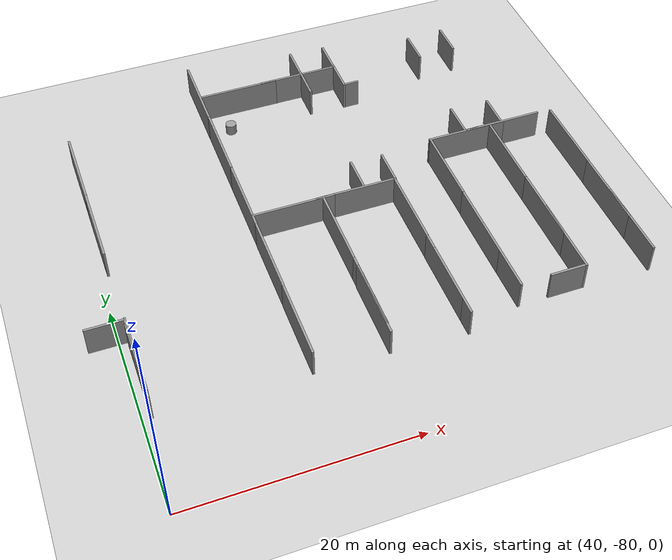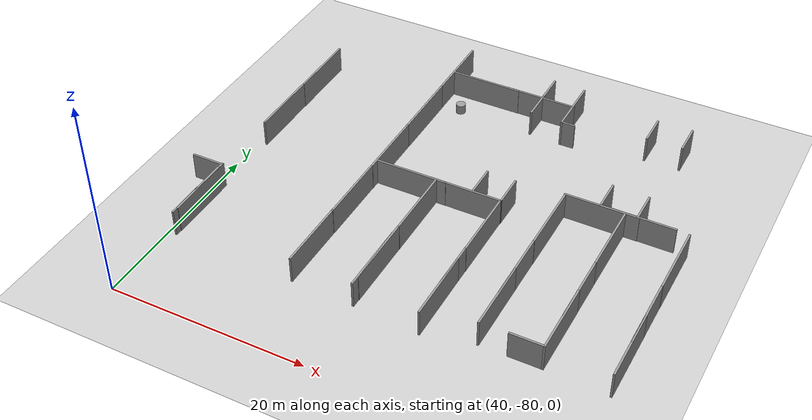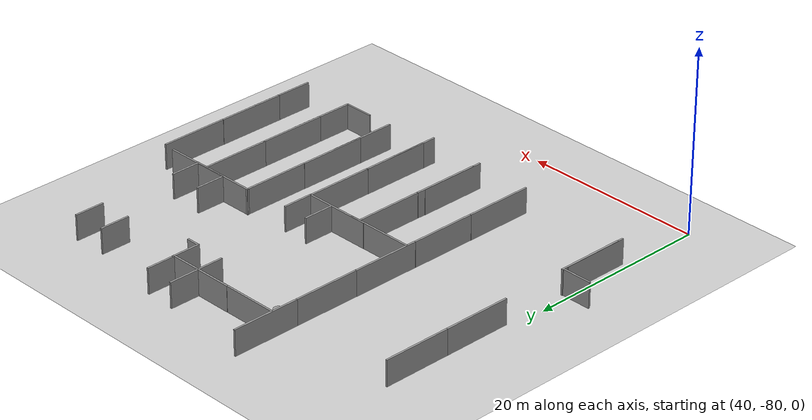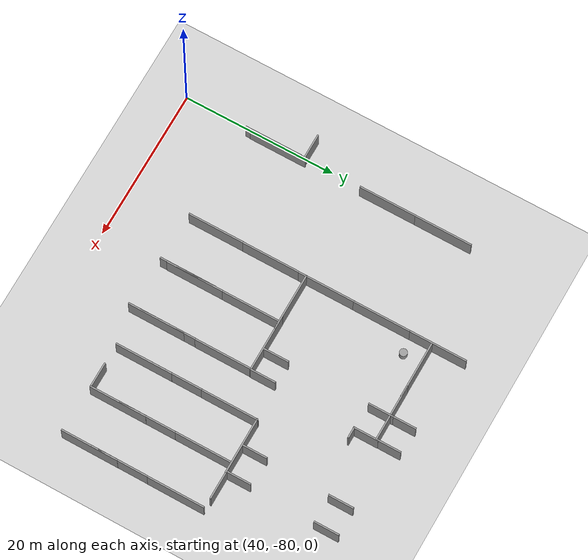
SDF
<sdf version="1.7">
 <world name="default">
  <model name="ground_plane">
   <static>1</static>
   <link name="link">
    <collision name="collision">
     <geometry><plane><normal>0 0 1</normal><size>100 100</size></plane></geometry>
     <surface>
      <contact><collide_bitmask>65535</collide_bitmask></contact>
      <friction><ode><mu>100</mu><mu2>50</mu2></ode></friction>
     </surface>
    </collision>
    <visual name="visual">
     <cast_shadows>0</cast_shadows>
     <geometry><plane><normal>0 0 1</normal><size>100 100</size></plane></geometry>
     <material>
      <script><uri>file://media/materials/scripts/gazebo.material</uri><name>Gazebo/Grey</name></script>
     </material>
    </visual>
   </link>
  </model>
  <model name="grey_wall_clone_2_clone_clone_clone_1_clone_clone_clone_clone_2_clone">
   <static>1</static>
   <link name="link">
    <pose>0 0 1.4 0 -0 0</pose>
    <collision name="collision"><geometry><box><size>7.5 0.2 2.8</size></box></geometry></collision>
    <visual name="visual">
     <cast_shadows>0</cast_shadows>
     <geometry><box><size>7.5 0.2 2.8</size></box></geometry>
     <material>
      <script>
       <uri>model://grey_wall/materials/scripts</uri>
       <uri>model://grey_wall/materials/textures</uri>
       <name>vrc/grey_wall</name>
      </script>
     </material>
    </visual>
   </link>
   <pose>40.8158 -67.0392 0 0 0 -1.5708</pose>
  </model>
  <model name="grey_wall_clone_2_clone_clone_clone_1_clone_clone_clone_clone_2_clone_0">
   <static>1</static>
   <link name="link">
    <pose>0 0 1.4 0 -0 0</pose>
    <collision name="collision"><geometry><box><size>7.5 0.2 2.8</size></box></geometry></collision>
    <visual name="visual">
     <cast_shadows>0</cast_shadows>
     <geometry><box><size>7.5 0.2 2.8</size></box></geometry>
     <material>
      <script>
       <uri>model://grey_wall/materials/scripts</uri>
       <uri>model://grey_wall/materials/textures</uri>
       <name>vrc/grey_wall</name>
      </script>
     </material>
    </visual>
   </link>
   <pose>40.7724 -67.6954 0 0 0 -1.5708</pose>
  </model>
  <model name="grey_wall_clone_2_clone_clone_clone_1_clone_clone_clone_clone_2_clone_2">
   <static>1</static>
   <link name="link">
    <pose>0 0 1.4 0 -0 0</pose>
    <collision name="collision"><geometry><box><size>7.5 0.2 2.8</size></box></geometry></collision>
    <visual name="visual">
     <cast_shadows>0</cast_shadows>
     <geometry><box><size>7.5 0.2 2.8</size></box></geometry>
     <material>
      <script>
       <uri>model://grey_wall/materials/scripts</uri>
       <uri>model://grey_wall/materials/textures</uri>
       <name>vrc/grey_wall</name>
      </script>
     </material>
    </visual>
   </link>
   <pose>40.8041 -52.2143 0 0 0 -1.5708</pose>
  </model>
  <model name="grey_wall_clone_2_clone_clone_clone_1_clone_clone_clone_clone_2_clone_3">
   <static>1</static>
   <link name="link">
    <pose>0 0 1.4 0 -0 0</pose>
    <collision name="collision"><geometry><box><size>7.5 0.2 2.8</size></box></geometry></collision>
    <visual name="visual">
     <cast_shadows>0</cast_shadows>
     <geometry><box><size>7.5 0.2 2.8</size></box></geometry>
     <material>
      <script>
       <uri>model://grey_wall/materials/scripts</uri>
       <uri>model://grey_wall/materials/textures</uri>
       <name>vrc/grey_wall</name>
      </script>
     </material>
    </visual>
   </link>
   <pose>40.8131 -44.7602 0 0 0 -1.5708</pose>
  </model>
  <model name="fixed_half_clone_17_clone_3">
   <link name="link">
    <pose>0 0 1.4 0 -0 0</pose>
    <inertial>
     <mass>1</mass>
     <inertia><ixx>1</ixx><ixy>0</ixy><ixz>0</ixz><iyy>1</iyy><iyz>0</iyz><izz>1</izz></inertia>
    </inertial>
    <visual name="visual">
     <cast_shadows>0</cast_shadows>
     <geometry><box><size>3.3 0.2 2.8</size></box></geometry>
     <material>
      <script>
       <uri>model://grey_wall/materials/scripts</uri>
       <uri>model://grey_wall/materials/textures</uri>
       <name>vrc/grey_wall</name>
      </script>
      <shader type="pixel"><normal_map>__default__</normal_map></shader>
      <ambient>1 1 1 1</ambient>
      <diffuse>1 1 1 1</diffuse>
      <specular>0 0 0 1</specular>
      <emissive>0 0 0 1</emissive>
     </material>
    </visual>
    <collision name="collision">
     <geometry><box><size>3.3 0.2 2.8</size></box></geometry>
     <surface>
      <friction>
       <ode><mu>1</mu><mu2>1</mu2><fdir1>0 0 0</fdir1><slip1>0</slip1><slip2>0</slip2></ode>
       <torsional>
        <coefficient>1</coefficient>
        <patch_radius>0</patch_radius>
        <surface_radius>0</surface_radius>
        <use_patch_radius>1</use_patch_radius>
        <ode><slip>0</slip></ode>
       </torsional>
      </friction>
      <bounce><restitution_coefficient>0</restitution_coefficient><threshold>1e+06</threshold></bounce>
      <contact>
       <collide_without_contact>0</collide_without_contact>
       <collide_without_contact_bitmask>1</collide_without_contact_bitmask>
       <collide_bitmask>1</collide_bitmask>
       <ode>
        <soft_cfm>0</soft_cfm>
        <soft_erp>0.2</soft_erp>
        <kp>1e+13</kp>
        <kd>1</kd>
        <max_vel>0.01</max_vel>
        <min_depth>0</min_depth>
       </ode>
       <bullet>
        <split_impulse>1</split_impulse>
        <split_impulse_penetration_threshold>-0.01</split_impulse_penetration_threshold>
        <soft_cfm>0</soft_cfm>
        <soft_erp>0.2</soft_erp>
        <kp>1e+13</kp>
        <kd>1</kd>
       </bullet>
      </contact>
     </surface>
    </collision>
   </link>
   <static>1</static>
   <pose>39.1343 -63.4639 0 0 -0 3.14159</pose>
  </model>
  <model name="grey_wall_clone_2_clone_clone_clone_1_clone_clone_0_clone_1_clone_clone_clone_clone_clone">
   <static>1</static>
   <link name="link">
    <pose>0 0 1.4 0 -0 0</pose>
    <collision name="collision"><geometry><box><size>7.5 0.2 2.8</size></box></geometry></collision>
    <visual name="visual">
     <cast_shadows>0</cast_shadows>
     <geometry><box><size>7.5 0.2 2.8</size></box></geometry>
     <material>
      <script>
       <uri>model://grey_wall/materials/scripts</uri>
       <uri>model://grey_wall/materials/textures</uri>
       <name>vrc/grey_wall</name>
      </script>
     </material>
    </visual>
   </link>
   <pose>53.7303 -38.414 0 0 0 -1.5708</pose>
  </model>
  <model name="grey_wall_clone_2_clone_clone_clone_1_clone_clone_0_clone_1_clone_clone_clone_clone_clone_0">
   <static>1</static>
   <link name="link">
    <pose>0 0 1.4 0 -0 0</pose>
    <collision name="collision"><geometry><box><size>7.5 0.2 2.8</size></box></geometry></collision>
    <visual name="visual">
     <cast_shadows>0</cast_shadows>
     <geometry><box><size>7.5 0.2 2.8</size></box></geometry>
     <material>
      <script>
       <uri>model://grey_wall/materials/scripts</uri>
       <uri>model://grey_wall/materials/textures</uri>
       <name>vrc/grey_wall</name>
      </script>
     </material>
    </visual>
   </link>
   <pose>53.7355 -45.8856 0 0 0 -1.5708</pose>
  </model>
  <model name="grey_wall_clone_2_clone_clone_clone_1_clone_clone_0_clone_1_clone_clone_clone_clone_clone_1">
   <static>1</static>
   <link name="link">
    <pose>0 0 1.4 0 -0 0</pose>
    <collision name="collision"><geometry><box><size>7.5 0.2 2.8</size></box></geometry></collision>
    <visual name="visual">
     <cast_shadows>0</cast_shadows>
     <geometry><box><size>7.5 0.2 2.8</size></box></geometry>
     <material>
      <script>
       <uri>model://grey_wall/materials/scripts</uri>
       <uri>model://grey_wall/materials/textures</uri>
       <name>vrc/grey_wall</name>
      </script>
     </material>
    </visual>
   </link>
   <pose>53.7231 -53.2391 0 0 0 -1.5708</pose>
  </model>
  <model name="grey_wall_clone_2_clone_clone_clone_1_clone_clone_0_clone_1_clone_clone_clone_clone_clone_2">
   <static>1</static>
   <link name="link">
    <pose>0 0 1.4 0 -0 0</pose>
    <collision name="collision"><geometry><box><size>7.5 0.2 2.8</size></box></geometry></collision>
    <visual name="visual">
     <cast_shadows>0</cast_shadows>
     <geometry><box><size>7.5 0.2 2.8</size></box></geometry>
     <material>
      <script>
       <uri>model://grey_wall/materials/scripts</uri>
       <uri>model://grey_wall/materials/textures</uri>
       <name>vrc/grey_wall</name>
      </script>
     </material>
    </visual>
   </link>
   <pose>53.7033 -60.7358 0 0 0 -1.5708</pose>
  </model>
  <model name="grey_wall_clone_2_clone_clone_clone_1_clone_clone_0_clone_1_clone_clone_clone_clone_clone_3">
   <static>1</static>
   <link name="link">
    <pose>0 0 1.4 0 -0 0</pose>
    <collision name="collision"><geometry><box><size>7.5 0.2 2.8</size></box></geometry></collision>
    <visual name="visual">
     <cast_shadows>0</cast_shadows>
     <geometry><box><size>7.5 0.2 2.8</size></box></geometry>
     <material>
      <script>
       <uri>model://grey_wall/materials/scripts</uri>
       <uri>model://grey_wall/materials/textures</uri>
       <name>vrc/grey_wall</name>
      </script>
     </material>
    </visual>
   </link>
   <pose>53.6836 -68.0389 0 0 0 -1.5708</pose>
  </model>
  <model name="grey_wall_clone_1_clone_2_clone_clone_clone_clone_clone_clone_clone_clone_clone_0_clone">
   <static>1</static>
   <link name="link">
    <pose>0 0 1.4 0 -0 0</pose>
    <collision name="collision"><geometry><box><size>7.5 0.2 2.8</size></box></geometry></collision>
    <visual name="visual">
     <cast_shadows>0</cast_shadows>
     <geometry><box><size>7.5 0.2 2.8</size></box></geometry>
     <material>
      <script>
       <uri>model://grey_wall/materials/scripts</uri>
       <uri>model://grey_wall/materials/textures</uri>
       <name>vrc/grey_wall</name>
      </script>
     </material>
    </visual>
   </link>
   <pose>57.4842 -39.19 0 0 -0 0</pose>
  </model>
  <model name="grey_wall_clone_1_clone_2_clone_clone_clone_clone_clone_clone_clone_clone_clone_0_clone_clone">
   <static>1</static>
   <link name="link">
    <pose>0 0 1.4 0 -0 0</pose>
    <collision name="collision"><geometry><box><size>7.5 0.2 2.8</size></box></geometry></collision>
    <visual name="visual">
     <cast_shadows>0</cast_shadows>
     <geometry><box><size>7.5 0.2 2.8</size></box></geometry>
     <material>
      <script>
       <uri>model://grey_wall/materials/scripts</uri>
       <uri>model://grey_wall/materials/textures</uri>
       <name>vrc/grey_wall</name>
      </script>
     </material>
    </visual>
   </link>
   <pose>63.5284 -39.1669 0 0 -0 0</pose>
  </model>
  <model name="fixed_half_clone_16_clone_clone_clone_0_clone">
   <link name="link">
    <pose>0 0 1.4 0 -0 0</pose>
    <inertial>
     <mass>1</mass>
     <inertia><ixx>1</ixx><ixy>0</ixy><ixz>0</ixz><iyy>1</iyy><iyz>0</iyz><izz>1</izz></inertia>
    </inertial>
    <visual name="visual">
     <cast_shadows>0</cast_shadows>
     <geometry><box><size>3.3 0.2 2.8</size></box></geometry>
     <material>
      <script>
       <uri>model://grey_wall/materials/scripts</uri>
       <uri>model://grey_wall/materials/textures</uri>
       <name>vrc/grey_wall</name>
      </script>
      <shader type="pixel"><normal_map>__default__</normal_map></shader>
      <ambient>1 1 1 1</ambient>
      <diffuse>1 1 1 1</diffuse>
      <specular>0 0 0 1</specular>
      <emissive>0 0 0 1</emissive>
     </material>
    </visual>
    <collision name="collision">
     <geometry><box><size>3.3 0.2 2.8</size></box></geometry>
     <surface>
      <friction>
       <ode><mu>1</mu><mu2>1</mu2><fdir1>0 0 0</fdir1><slip1>0</slip1><slip2>0</slip2></ode>
       <torsional>
        <coefficient>1</coefficient>
        <patch_radius>0</patch_radius>
        <surface_radius>0</surface_radius>
        <use_patch_radius>1</use_patch_radius>
        <ode><slip>0</slip></ode>
       </torsional>
      </friction>
      <bounce><restitution_coefficient>0</restitution_coefficient><threshold>1e+06</threshold></bounce>
      <contact>
       <collide_without_contact>0</collide_without_contact>
       <collide_without_contact_bitmask>1</collide_without_contact_bitmask>
       <collide_bitmask>1</collide_bitmask>
       <ode>
        <soft_cfm>0</soft_cfm>
        <soft_erp>0.2</soft_erp>
        <kp>1e+13</kp>
        <kd>1</kd>
        <max_vel>0.01</max_vel>
        <min_depth>0</min_depth>
       </ode>
       <bullet>
        <split_impulse>1</split_impulse>
        <split_impulse_penetration_threshold>-0.01</split_impulse_penetration_threshold>
        <soft_cfm>0</soft_cfm>
        <soft_erp>0.2</soft_erp>
        <kp>1e+13</kp>
        <kd>1</kd>
       </bullet>
      </contact>
     </surface>
    </collision>
   </link>
   <static>1</static>
   <pose>67.1907 -37.5776 0 0 0 -1.5708</pose>
  </model>
  <model name="fixed_half_clone_16_clone_clone_clone_0_clone_1">
   <link name="link">
    <pose>0 0 1.4 0 -0 0</pose>
    <inertial>
     <mass>1</mass>
     <inertia><ixx>1</ixx><ixy>0</ixy><ixz>0</ixz><iyy>1</iyy><iyz>0</iyz><izz>1</izz></inertia>
    </inertial>
    <visual name="visual">
     <cast_shadows>0</cast_shadows>
     <geometry><box><size>3.3 0.2 2.8</size></box></geometry>
     <material>
      <script>
       <uri>model://grey_wall/materials/scripts</uri>
       <uri>model://grey_wall/materials/textures</uri>
       <name>vrc/grey_wall</name>
      </script>
      <shader type="pixel"><normal_map>__default__</normal_map></shader>
      <ambient>1 1 1 1</ambient>
      <diffuse>1 1 1 1</diffuse>
      <specular>0 0 0 1</specular>
      <emissive>0 0 0 1</emissive>
     </material>
    </visual>
    <collision name="collision">
     <geometry><box><size>3.3 0.2 2.8</size></box></geometry>
     <surface>
      <friction>
       <ode><mu>1</mu><mu2>1</mu2><fdir1>0 0 0</fdir1><slip1>0</slip1><slip2>0</slip2></ode>
       <torsional>
        <coefficient>1</coefficient>
        <patch_radius>0</patch_radius>
        <surface_radius>0</surface_radius>
        <use_patch_radius>1</use_patch_radius>
        <ode><slip>0</slip></ode>
       </torsional>
      </friction>
      <bounce><restitution_coefficient>0</restitution_coefficient><threshold>1e+06</threshold></bounce>
      <contact>
       <collide_without_contact>0</collide_without_contact>
       <collide_without_contact_bitmask>1</collide_without_contact_bitmask>
       <collide_bitmask>1</collide_bitmask>
       <ode>
        <soft_cfm>0</soft_cfm>
        <soft_erp>0.2</soft_erp>
        <kp>1e+13</kp>
        <kd>1</kd>
        <max_vel>0.01</max_vel>
        <min_depth>0</min_depth>
       </ode>
       <bullet>
        <split_impulse>1</split_impulse>
        <split_impulse_penetration_threshold>-0.01</split_impulse_penetration_threshold>
        <soft_cfm>0</soft_cfm>
        <soft_erp>0.2</soft_erp>
        <kp>1e+13</kp>
        <kd>1</kd>
       </bullet>
      </contact>
     </surface>
    </collision>
   </link>
   <static>1</static>
   <pose>63.8354 -37.4466 0 0 0 -1.5708</pose>
  </model>
  <model name="grey_wall_clone_1_clone_2_clone_clone_clone_clone_clone_clone_clone_clone_clone_0_clone_clone_0">
   <static>1</static>
   <link name="link">
    <pose>0 0 1.4 0 -0 0</pose>
    <collision name="collision"><geometry><box><size>7.5 0.2 2.8</size></box></geometry></collision>
    <visual name="visual">
     <cast_shadows>0</cast_shadows>
     <geometry><box><size>7.5 0.2 2.8</size></box></geometry>
     <material>
      <script>
       <uri>model://grey_wall/materials/scripts</uri>
       <uri>model://grey_wall/materials/textures</uri>
       <name>vrc/grey_wall</name>
      </script>
     </material>
    </visual>
   </link>
   <pose>57.4464 -55.9716 0 0 -0 0</pose>
  </model>
  <model name="fixed_half_clone_16_clone_clone_clone_0_clone_clone">
   <link name="link">
    <pose>0 0 1.4 0 -0 0</pose>
    <inertial>
     <mass>1</mass>
     <inertia><ixx>1</ixx><ixy>0</ixy><ixz>0</ixz><iyy>1</iyy><iyz>0</iyz><izz>1</izz></inertia>
    </inertial>
    <visual name="visual">
     <cast_shadows>0</cast_shadows>
     <geometry><box><size>3.3 0.2 2.8</size></box></geometry>
     <material>
      <script>
       <uri>model://grey_wall/materials/scripts</uri>
       <uri>model://grey_wall/materials/textures</uri>
       <name>vrc/grey_wall</name>
      </script>
      <shader type="pixel"><normal_map>__default__</normal_map></shader>
      <ambient>1 1 1 1</ambient>
      <diffuse>1 1 1 1</diffuse>
      <specular>0 0 0 1</specular>
      <emissive>0 0 0 1</emissive>
     </material>
    </visual>
    <collision name="collision">
     <geometry><box><size>3.3 0.2 2.8</size></box></geometry>
     <surface>
      <friction>
       <ode><mu>1</mu><mu2>1</mu2><fdir1>0 0 0</fdir1><slip1>0</slip1><slip2>0</slip2></ode>
       <torsional>
        <coefficient>1</coefficient>
        <patch_radius>0</patch_radius>
        <surface_radius>0</surface_radius>
        <use_patch_radius>1</use_patch_radius>
        <ode><slip>0</slip></ode>
       </torsional>
      </friction>
      <bounce><restitution_coefficient>0</restitution_coefficient><threshold>1e+06</threshold></bounce>
      <contact>
       <collide_without_contact>0</collide_without_contact>
       <collide_without_contact_bitmask>1</collide_without_contact_bitmask>
       <collide_bitmask>1</collide_bitmask>
       <ode>
        <soft_cfm>0</soft_cfm>
        <soft_erp>0.2</soft_erp>
        <kp>1e+13</kp>
        <kd>1</kd>
        <max_vel>0.01</max_vel>
        <min_depth>0</min_depth>
       </ode>
       <bullet>
        <split_impulse>1</split_impulse>
        <split_impulse_penetration_threshold>-0.01</split_impulse_penetration_threshold>
        <soft_cfm>0</soft_cfm>
        <soft_erp>0.2</soft_erp>
        <kp>1e+13</kp>
        <kd>1</kd>
       </bullet>
      </contact>
     </surface>
    </collision>
   </link>
   <static>1</static>
   <pose>67.2148 -40.533 0 0 0 -1.5708</pose>
  </model>
  <model name="fixed_half_clone_16_clone_clone_clone_0_clone_clone_0">
   <link name="link">
    <pose>0 0 1.4 0 -0 0</pose>
    <inertial>
     <mass>1</mass>
     <inertia><ixx>1</ixx><ixy>0</ixy><ixz>0</ixz><iyy>1</iyy><iyz>0</iyz><izz>1</izz></inertia>
    </inertial>
    <visual name="visual">
     <cast_shadows>0</cast_shadows>
     <geometry><box><size>3.3 0.2 2.8</size></box></geometry>
     <material>
      <script>
       <uri>model://grey_wall/materials/scripts</uri>
       <uri>model://grey_wall/materials/textures</uri>
       <name>vrc/grey_wall</name>
      </script>
      <shader type="pixel"><normal_map>__default__</normal_map></shader>
      <ambient>1 1 1 1</ambient>
      <diffuse>1 1 1 1</diffuse>
      <specular>0 0 0 1</specular>
      <emissive>0 0 0 1</emissive>
     </material>
    </visual>
    <collision name="collision">
     <geometry><box><size>3.3 0.2 2.8</size></box></geometry>
     <surface>
      <friction>
       <ode><mu>1</mu><mu2>1</mu2><fdir1>0 0 0</fdir1><slip1>0</slip1><slip2>0</slip2></ode>
       <torsional>
        <coefficient>1</coefficient>
        <patch_radius>0</patch_radius>
        <surface_radius>0</surface_radius>
        <use_patch_radius>1</use_patch_radius>
        <ode><slip>0</slip></ode>
       </torsional>
      </friction>
      <bounce><restitution_coefficient>0</restitution_coefficient><threshold>1e+06</threshold></bounce>
      <contact>
       <collide_without_contact>0</collide_without_contact>
       <collide_without_contact_bitmask>1</collide_without_contact_bitmask>
       <collide_bitmask>1</collide_bitmask>
       <ode>
        <soft_cfm>0</soft_cfm>
        <soft_erp>0.2</soft_erp>
        <kp>1e+13</kp>
        <kd>1</kd>
        <max_vel>0.01</max_vel>
        <min_depth>0</min_depth>
       </ode>
       <bullet>
        <split_impulse>1</split_impulse>
        <split_impulse_penetration_threshold>-0.01</split_impulse_penetration_threshold>
        <soft_cfm>0</soft_cfm>
        <soft_erp>0.2</soft_erp>
        <kp>1e+13</kp>
        <kd>1</kd>
       </bullet>
      </contact>
     </surface>
    </collision>
   </link>
   <static>1</static>
   <pose>63.8506 -40.4054 0 0 0 -1.5708</pose>
  </model>
  <model name="grey_wall_clone_1_clone_2_clone_clone_clone_clone_clone_clone_clone_clone_clone_0_clone_clone_0_clone">
   <static>1</static>
   <link name="link">
    <pose>0 0 1.4 0 -0 0</pose>
    <collision name="collision"><geometry><box><size>7.5 0.2 2.8</size></box></geometry></collision>
    <visual name="visual">
     <cast_shadows>0</cast_shadows>
     <geometry><box><size>7.5 0.2 2.8</size></box></geometry>
     <material>
      <script>
       <uri>model://grey_wall/materials/scripts</uri>
       <uri>model://grey_wall/materials/textures</uri>
       <name>vrc/grey_wall</name>
      </script>
     </material>
    </visual>
   </link>
   <pose>63.2351 -55.9491 0 0 -0 0</pose>
  </model>
  <model name="fixed_half_clone_16_clone_clone_clone_0_clone_clone_clone_0">
   <link name="link">
    <pose>0 0 1.4 0 -0 0</pose>
    <inertial>
     <mass>1</mass>
     <inertia><ixx>1</ixx><ixy>0</ixy><ixz>0</ixz><iyy>1</iyy><iyz>0</iyz><izz>1</izz></inertia>
    </inertial>
    <visual name="visual">
     <cast_shadows>0</cast_shadows>
     <geometry><box><size>3.3 0.2 2.8</size></box></geometry>
     <material>
      <script>
       <uri>model://grey_wall/materials/scripts</uri>
       <uri>model://grey_wall/materials/textures</uri>
       <name>vrc/grey_wall</name>
      </script>
      <shader type="pixel"><normal_map>__default__</normal_map></shader>
      <ambient>1 1 1 1</ambient>
      <diffuse>1 1 1 1</diffuse>
      <specular>0 0 0 1</specular>
      <emissive>0 0 0 1</emissive>
     </material>
    </visual>
    <collision name="collision">
     <geometry><box><size>3.3 0.2 2.8</size></box></geometry>
     <surface>
      <friction>
       <ode><mu>1</mu><mu2>1</mu2><fdir1>0 0 0</fdir1><slip1>0</slip1><slip2>0</slip2></ode>
       <torsional>
        <coefficient>1</coefficient>
        <patch_radius>0</patch_radius>
        <surface_radius>0</surface_radius>
        <use_patch_radius>1</use_patch_radius>
        <ode><slip>0</slip></ode>
       </torsional>
      </friction>
      <bounce><restitution_coefficient>0</restitution_coefficient><threshold>1e+06</threshold></bounce>
      <contact>
       <collide_without_contact>0</collide_without_contact>
       <collide_without_contact_bitmask>1</collide_without_contact_bitmask>
       <collide_bitmask>1</collide_bitmask>
       <ode>
        <soft_cfm>0</soft_cfm>
        <soft_erp>0.2</soft_erp>
        <kp>1e+13</kp>
        <kd>1</kd>
        <max_vel>0.01</max_vel>
        <min_depth>0</min_depth>
       </ode>
       <bullet>
        <split_impulse>1</split_impulse>
        <split_impulse_penetration_threshold>-0.01</split_impulse_penetration_threshold>
        <soft_cfm>0</soft_cfm>
        <soft_erp>0.2</soft_erp>
        <kp>1e+13</kp>
        <kd>1</kd>
       </bullet>
      </contact>
     </surface>
    </collision>
   </link>
   <static>1</static>
   <pose>63.9618 -54.2211 0 0 0 -1.5708</pose>
  </model>
  <model name="fixed_half_clone_16_clone_clone_clone_0_clone_clone_clone">
   <link name="link">
    <pose>0 0 1.4 0 -0 0</pose>
    <inertial>
     <mass>1</mass>
     <inertia><ixx>1</ixx><ixy>0</ixy><ixz>0</ixz><iyy>1</iyy><iyz>0</iyz><izz>1</izz></inertia>
    </inertial>
    <visual name="visual">
     <cast_shadows>0</cast_shadows>
     <geometry><box><size>3.3 0.2 2.8</size></box></geometry>
     <material>
      <script>
       <uri>model://grey_wall/materials/scripts</uri>
       <uri>model://grey_wall/materials/textures</uri>
       <name>vrc/grey_wall</name>
      </script>
      <shader type="pixel"><normal_map>__default__</normal_map></shader>
      <ambient>1 1 1 1</ambient>
      <diffuse>1 1 1 1</diffuse>
      <specular>0 0 0 1</specular>
      <emissive>0 0 0 1</emissive>
     </material>
    </visual>
    <collision name="collision">
     <geometry><box><size>3.3 0.2 2.8</size></box></geometry>
     <surface>
      <friction>
       <ode><mu>1</mu><mu2>1</mu2><fdir1>0 0 0</fdir1><slip1>0</slip1><slip2>0</slip2></ode>
       <torsional>
        <coefficient>1</coefficient>
        <patch_radius>0</patch_radius>
        <surface_radius>0</surface_radius>
        <use_patch_radius>1</use_patch_radius>
        <ode><slip>0</slip></ode>
       </torsional>
      </friction>
      <bounce><restitution_coefficient>0</restitution_coefficient><threshold>1e+06</threshold></bounce>
      <contact>
       <collide_without_contact>0</collide_without_contact>
       <collide_without_contact_bitmask>1</collide_without_contact_bitmask>
       <collide_bitmask>1</collide_bitmask>
       <ode>
        <soft_cfm>0</soft_cfm>
        <soft_erp>0.2</soft_erp>
        <kp>1e+13</kp>
        <kd>1</kd>
        <max_vel>0.01</max_vel>
        <min_depth>0</min_depth>
       </ode>
       <bullet>
        <split_impulse>1</split_impulse>
        <split_impulse_penetration_threshold>-0.01</split_impulse_penetration_threshold>
        <soft_cfm>0</soft_cfm>
        <soft_erp>0.2</soft_erp>
        <kp>1e+13</kp>
        <kd>1</kd>
       </bullet>
      </contact>
     </surface>
    </collision>
   </link>
   <static>1</static>
   <pose>66.9173 -54.2883 0 0 0 -1.5708</pose>
  </model>
  <model name="grey_wall_clone_2_clone_clone_clone_1_clone_clone_0_clone_1_clone_clone_clone_clone_clone_2_clone">
   <static>1</static>
   <link name="link">
    <pose>0 0 1.4 0 -0 0</pose>
    <collision name="collision"><geometry><box><size>7.5 0.2 2.8</size></box></geometry></collision>
    <visual name="visual">
     <cast_shadows>0</cast_shadows>
     <geometry><box><size>7.5 0.2 2.8</size></box></geometry>
     <material>
      <script>
       <uri>model://grey_wall/materials/scripts</uri>
       <uri>model://grey_wall/materials/textures</uri>
       <name>vrc/grey_wall</name>
      </script>
     </material>
    </visual>
   </link>
   <pose>66.861 -59.6522 0 0 0 -1.5708</pose>
  </model>
  <model name="grey_wall_clone_2_clone_clone_clone_1_clone_clone_0_clone_1_clone_clone_clone_clone_clone_2_clone_0">
   <static>1</static>
   <link name="link">
    <pose>0 0 1.4 0 -0 0</pose>
    <collision name="collision"><geometry><box><size>7.5 0.2 2.8</size></box></geometry></collision>
    <visual name="visual">
     <cast_shadows>0</cast_shadows>
     <geometry><box><size>7.5 0.2 2.8</size></box></geometry>
     <material>
      <script>
       <uri>model://grey_wall/materials/scripts</uri>
       <uri>model://grey_wall/materials/textures</uri>
       <name>vrc/grey_wall</name>
      </script>
     </material>
    </visual>
   </link>
   <pose>66.8403 -67.0718 0 0 0 -1.5708</pose>
  </model>
  <model name="grey_wall_clone_2_clone_clone_clone_1_clone_clone_0_clone_1_clone_clone_clone_clone_clone_2_clone_1">
   <static>1</static>
   <link name="link">
    <pose>0 0 1.4 0 -0 0</pose>
    <collision name="collision"><geometry><box><size>7.5 0.2 2.8</size></box></geometry></collision>
    <visual name="visual">
     <cast_shadows>0</cast_shadows>
     <geometry><box><size>7.5 0.2 2.8</size></box></geometry>
     <material>
      <script>
       <uri>model://grey_wall/materials/scripts</uri>
       <uri>model://grey_wall/materials/textures</uri>
       <name>vrc/grey_wall</name>
      </script>
     </material>
    </visual>
   </link>
   <pose>60.1575 -59.8042 0 0 0 -1.5708</pose>
  </model>
  <model name="grey_wall_clone_2_clone_clone_clone_1_clone_clone_0_clone_1_clone_clone_clone_clone_clone_2_clone_2">
   <static>1</static>
   <link name="link">
    <pose>0 0 1.4 0 -0 0</pose>
    <collision name="collision"><geometry><box><size>7.5 0.2 2.8</size></box></geometry></collision>
    <visual name="visual">
     <cast_shadows>0</cast_shadows>
     <geometry><box><size>7.5 0.2 2.8</size></box></geometry>
     <material>
      <script>
       <uri>model://grey_wall/materials/scripts</uri>
       <uri>model://grey_wall/materials/textures</uri>
       <name>vrc/grey_wall</name>
      </script>
     </material>
    </visual>
   </link>
   <pose>60.1457 -67.321 0 0 0 -1.5708</pose>
  </model>
  <model name="grey_wall_clone_2_clone_clone_clone_1_clone_clone_0_clone_1_clone_clone_clone_clone_clone_2_clone_3">
   <static>1</static>
   <link name="link">
    <pose>0 0 1.4 0 -0 0</pose>
    <collision name="collision"><geometry><box><size>7.5 0.2 2.8</size></box></geometry></collision>
    <visual name="visual">
     <cast_shadows>0</cast_shadows>
     <geometry><box><size>7.5 0.2 2.8</size></box></geometry>
     <material>
      <script>
       <uri>model://grey_wall/materials/scripts</uri>
       <uri>model://grey_wall/materials/textures</uri>
       <name>vrc/grey_wall</name>
      </script>
     </material>
    </visual>
   </link>
   <pose>60.1157 -68.2312 0 0 0 -1.5708</pose>
  </model>
  <model name="grey_wall_clone_2_clone_clone_clone_1_clone_clone_0_clone_1_clone_clone_clone_clone_clone_2_clone_0_clone">
   <static>1</static>
   <link name="link">
    <pose>0 0 1.4 0 -0 0</pose>
    <collision name="collision"><geometry><box><size>7.5 0.2 2.8</size></box></geometry></collision>
    <visual name="visual">
     <cast_shadows>0</cast_shadows>
     <geometry><box><size>7.5 0.2 2.8</size></box></geometry>
     <material>
      <script>
       <uri>model://grey_wall/materials/scripts</uri>
       <uri>model://grey_wall/materials/textures</uri>
       <name>vrc/grey_wall</name>
      </script>
     </material>
    </visual>
   </link>
   <pose>66.8416 -68.6181 0 0 0 -1.5708</pose>
  </model>
  <model name="fixed_half_clone_16_clone_clone_clone_1_clone_clone_clone">
   <link name="link">
    <pose>0 0 1.4 0 -0 0</pose>
    <inertial>
     <mass>1</mass>
     <inertia><ixx>1</ixx><ixy>0</ixy><ixz>0</ixz><iyy>1</iyy><iyz>0</iyz><izz>1</izz></inertia>
    </inertial>
    <visual name="visual">
     <cast_shadows>0</cast_shadows>
     <geometry><box><size>3.3 0.2 2.8</size></box></geometry>
     <material>
      <script>
       <uri>model://grey_wall/materials/scripts</uri>
       <uri>model://grey_wall/materials/textures</uri>
       <name>vrc/grey_wall</name>
      </script>
      <shader type="pixel"><normal_map>__default__</normal_map></shader>
      <ambient>1 1 1 1</ambient>
      <diffuse>1 1 1 1</diffuse>
      <specular>0 0 0 1</specular>
      <emissive>0 0 0 1</emissive>
     </material>
    </visual>
    <collision name="collision">
     <geometry><box><size>3.3 0.2 2.8</size></box></geometry>
     <surface>
      <friction>
       <ode><mu>1</mu><mu2>1</mu2><fdir1>0 0 0</fdir1><slip1>0</slip1><slip2>0</slip2></ode>
       <torsional>
        <coefficient>1</coefficient>
        <patch_radius>0</patch_radius>
        <surface_radius>0</surface_radius>
        <use_patch_radius>1</use_patch_radius>
        <ode><slip>0</slip></ode>
       </torsional>
      </friction>
      <bounce><restitution_coefficient>0</restitution_coefficient><threshold>1e+06</threshold></bounce>
      <contact>
       <collide_without_contact>0</collide_without_contact>
       <collide_without_contact_bitmask>1</collide_without_contact_bitmask>
       <collide_bitmask>1</collide_bitmask>
       <ode>
        <soft_cfm>0</soft_cfm>
        <soft_erp>0.2</soft_erp>
        <kp>1e+13</kp>
        <kd>1</kd>
        <max_vel>0.01</max_vel>
        <min_depth>0</min_depth>
       </ode>
       <bullet>
        <split_impulse>1</split_impulse>
        <split_impulse_penetration_threshold>-0.01</split_impulse_penetration_threshold>
        <soft_cfm>0</soft_cfm>
        <soft_erp>0.2</soft_erp>
        <kp>1e+13</kp>
        <kd>1</kd>
       </bullet>
      </contact>
     </surface>
    </collision>
   </link>
   <static>1</static>
   <pose>79.3198 -38.9591 0 0 0 -1.5708</pose>
  </model>
  <model name="fixed_half_clone_16_clone_clone_clone_1_clone_clone_clone_0">
   <link name="link">
    <pose>0 0 1.4 0 -0 0</pose>
    <inertial>
     <mass>1</mass>
     <inertia><ixx>1</ixx><ixy>0</ixy><ixz>0</ixz><iyy>1</iyy><iyz>0</iyz><izz>1</izz></inertia>
    </inertial>
    <visual name="visual">
     <cast_shadows>0</cast_shadows>
     <geometry><box><size>3.3 0.2 2.8</size></box></geometry>
     <material>
      <script>
       <uri>model://grey_wall/materials/scripts</uri>
       <uri>model://grey_wall/materials/textures</uri>
       <name>vrc/grey_wall</name>
      </script>
      <shader type="pixel"><normal_map>__default__</normal_map></shader>
      <ambient>1 1 1 1</ambient>
      <diffuse>1 1 1 1</diffuse>
      <specular>0 0 0 1</specular>
      <emissive>0 0 0 1</emissive>
     </material>
    </visual>
    <collision name="collision">
     <geometry><box><size>3.3 0.2 2.8</size></box></geometry>
     <surface>
      <friction>
       <ode><mu>1</mu><mu2>1</mu2><fdir1>0 0 0</fdir1><slip1>0</slip1><slip2>0</slip2></ode>
       <torsional>
        <coefficient>1</coefficient>
        <patch_radius>0</patch_radius>
        <surface_radius>0</surface_radius>
        <use_patch_radius>1</use_patch_radius>
        <ode><slip>0</slip></ode>
       </torsional>
      </friction>
      <bounce><restitution_coefficient>0</restitution_coefficient><threshold>1e+06</threshold></bounce>
      <contact>
       <collide_without_contact>0</collide_without_contact>
       <collide_without_contact_bitmask>1</collide_without_contact_bitmask>
       <collide_bitmask>1</collide_bitmask>
       <ode>
        <soft_cfm>0</soft_cfm>
        <soft_erp>0.2</soft_erp>
        <kp>1e+13</kp>
        <kd>1</kd>
        <max_vel>0.01</max_vel>
        <min_depth>0</min_depth>
       </ode>
       <bullet>
        <split_impulse>1</split_impulse>
        <split_impulse_penetration_threshold>-0.01</split_impulse_penetration_threshold>
        <soft_cfm>0</soft_cfm>
        <soft_erp>0.2</soft_erp>
        <kp>1e+13</kp>
        <kd>1</kd>
       </bullet>
      </contact>
     </surface>
    </collision>
   </link>
   <static>1</static>
   <pose>75.7238 -39.0655 0 0 0 -1.5708</pose>
  </model>
  <model name="half_wall_clone_0_clone_clone_clone_9_clone_1_clone_clone_clone_2">
   <link name="link">
    <pose>0 0 1.4 0 -0 0</pose>
    <inertial>
     <mass>1</mass>
     <inertia><ixx>1</ixx><ixy>0</ixy><ixz>0</ixz><iyy>1</iyy><iyz>0</iyz><izz>1</izz></inertia>
    </inertial>
    <visual name="visual">
     <cast_shadows>0</cast_shadows>
     <geometry><box><size>1.5 0.2 2.8</size></box></geometry>
     <material>
      <script>
       <uri>model://grey_wall/materials/scripts</uri>
       <uri>model://grey_wall/materials/textures</uri>
       <name>vrc/grey_wall</name>
      </script>
      <shader type="pixel"><normal_map>__default__</normal_map></shader>
      <ambient>1 1 1 1</ambient>
      <diffuse>1 1 1 1</diffuse>
      <specular>0 0 0 1</specular>
      <emissive>0 0 0 1</emissive>
     </material>
    </visual>
    <collision name="collision">
     <geometry><box><size>1.5 0.2 2.8</size></box></geometry>
     <surface>
      <friction>
       <ode><mu>1</mu><mu2>1</mu2><fdir1>0 0 0</fdir1><slip1>0</slip1><slip2>0</slip2></ode>
       <torsional>
        <coefficient>1</coefficient>
        <patch_radius>0</patch_radius>
        <surface_radius>0</surface_radius>
        <use_patch_radius>1</use_patch_radius>
        <ode><slip>0</slip></ode>
       </torsional>
      </friction>
      <bounce><restitution_coefficient>0</restitution_coefficient><threshold>1e+06</threshold></bounce>
      <contact>
       <collide_without_contact>0</collide_without_contact>
       <collide_without_contact_bitmask>1</collide_without_contact_bitmask>
       <collide_bitmask>1</collide_bitmask>
       <ode>
        <soft_cfm>0</soft_cfm>
        <soft_erp>0.2</soft_erp>
        <kp>1e+13</kp>
        <kd>1</kd>
        <max_vel>0.01</max_vel>
        <min_depth>0</min_depth>
       </ode>
       <bullet>
        <split_impulse>1</split_impulse>
        <split_impulse_penetration_threshold>-0.01</split_impulse_penetration_threshold>
        <soft_cfm>0</soft_cfm>
        <soft_erp>0.2</soft_erp>
        <kp>1e+13</kp>
        <kd>1</kd>
       </bullet>
      </contact>
     </surface>
    </collision>
   </link>
   <static>1</static>
   <pose>67.8904 -42.0671 0 0 -0 3.14159</pose>
  </model>
  <model name="grey_wall_clone_1_clone_2_clone_clone_clone_clone_clone_clone_clone_clone_clone_3_clone_0_clone_1_clone_clone_0_clone_1">
   <static>1</static>
   <link name="link">
    <pose>0 0 1.4 0 -0 0</pose>
    <collision name="collision"><geometry><box><size>7.5 0.2 2.8</size></box></geometry></collision>
    <visual name="visual">
     <cast_shadows>0</cast_shadows>
     <geometry><box><size>7.5 0.2 2.8</size></box></geometry>
     <material>
      <script>
       <uri>model://grey_wall/materials/scripts</uri>
       <uri>model://grey_wall/materials/textures</uri>
       <name>vrc/grey_wall</name>
      </script>
     </material>
    </visual>
   </link>
   <pose>79.052 -52.2445 0 0 -0 0</pose>
  </model>
  <model name="fixed_half_clone_16_clone_clone_clone_1_clone_clone_clone_clone">
   <link name="link">
    <pose>0 0 1.4 0 -0 0</pose>
    <inertial>
     <mass>1</mass>
     <inertia><ixx>1</ixx><ixy>0</ixy><ixz>0</ixz><iyy>1</iyy><iyz>0</iyz><izz>1</izz></inertia>
    </inertial>
    <visual name="visual">
     <cast_shadows>0</cast_shadows>
     <geometry><box><size>3.3 0.2 2.8</size></box></geometry>
     <material>
      <script>
       <uri>model://grey_wall/materials/scripts</uri>
       <uri>model://grey_wall/materials/textures</uri>
       <name>vrc/grey_wall</name>
      </script>
      <shader type="pixel"><normal_map>__default__</normal_map></shader>
      <ambient>1 1 1 1</ambient>
      <diffuse>1 1 1 1</diffuse>
      <specular>0 0 0 1</specular>
      <emissive>0 0 0 1</emissive>
     </material>
    </visual>
    <collision name="collision">
     <geometry><box><size>3.3 0.2 2.8</size></box></geometry>
     <surface>
      <friction>
       <ode><mu>1</mu><mu2>1</mu2><fdir1>0 0 0</fdir1><slip1>0</slip1><slip2>0</slip2></ode>
       <torsional>
        <coefficient>1</coefficient>
        <patch_radius>0</patch_radius>
        <surface_radius>0</surface_radius>
        <use_patch_radius>1</use_patch_radius>
        <ode><slip>0</slip></ode>
       </torsional>
      </friction>
      <bounce><restitution_coefficient>0</restitution_coefficient><threshold>1e+06</threshold></bounce>
      <contact>
       <collide_without_contact>0</collide_without_contact>
       <collide_without_contact_bitmask>1</collide_without_contact_bitmask>
       <collide_bitmask>1</collide_bitmask>
       <ode>
        <soft_cfm>0</soft_cfm>
        <soft_erp>0.2</soft_erp>
        <kp>1e+13</kp>
        <kd>1</kd>
        <max_vel>0.01</max_vel>
        <min_depth>0</min_depth>
       </ode>
       <bullet>
        <split_impulse>1</split_impulse>
        <split_impulse_penetration_threshold>-0.01</split_impulse_penetration_threshold>
        <soft_cfm>0</soft_cfm>
        <soft_erp>0.2</soft_erp>
        <kp>1e+13</kp>
        <kd>1</kd>
       </bullet>
      </contact>
     </surface>
    </collision>
   </link>
   <static>1</static>
   <pose>75.3681 -50.6288 0 0 0 -1.5708</pose>
  </model>
  <model name="fixed_half_clone_16_clone_clone_clone_1_clone_clone_clone_clone_0">
   <link name="link">
    <pose>0 0 1.4 0 -0 0</pose>
    <inertial>
     <mass>1</mass>
     <inertia><ixx>1</ixx><ixy>0</ixy><ixz>0</ixz><iyy>1</iyy><iyz>0</iyz><izz>1</izz></inertia>
    </inertial>
    <visual name="visual">
     <cast_shadows>0</cast_shadows>
     <geometry><box><size>3.3 0.2 2.8</size></box></geometry>
     <material>
      <script>
       <uri>model://grey_wall/materials/scripts</uri>
       <uri>model://grey_wall/materials/textures</uri>
       <name>vrc/grey_wall</name>
      </script>
      <shader type="pixel"><normal_map>__default__</normal_map></shader>
      <ambient>1 1 1 1</ambient>
      <diffuse>1 1 1 1</diffuse>
      <specular>0 0 0 1</specular>
      <emissive>0 0 0 1</emissive>
     </material>
    </visual>
    <collision name="collision">
     <geometry><box><size>3.3 0.2 2.8</size></box></geometry>
     <surface>
      <friction>
       <ode><mu>1</mu><mu2>1</mu2><fdir1>0 0 0</fdir1><slip1>0</slip1><slip2>0</slip2></ode>
       <torsional>
        <coefficient>1</coefficient>
        <patch_radius>0</patch_radius>
        <surface_radius>0</surface_radius>
        <use_patch_radius>1</use_patch_radius>
        <ode><slip>0</slip></ode>
       </torsional>
      </friction>
      <bounce><restitution_coefficient>0</restitution_coefficient><threshold>1e+06</threshold></bounce>
      <contact>
       <collide_without_contact>0</collide_without_contact>
       <collide_without_contact_bitmask>1</collide_without_contact_bitmask>
       <collide_bitmask>1</collide_bitmask>
       <ode>
        <soft_cfm>0</soft_cfm>
        <soft_erp>0.2</soft_erp>
        <kp>1e+13</kp>
        <kd>1</kd>
        <max_vel>0.01</max_vel>
        <min_depth>0</min_depth>
       </ode>
       <bullet>
        <split_impulse>1</split_impulse>
        <split_impulse_penetration_threshold>-0.01</split_impulse_penetration_threshold>
        <soft_cfm>0</soft_cfm>
        <soft_erp>0.2</soft_erp>
        <kp>1e+13</kp>
        <kd>1</kd>
       </bullet>
      </contact>
     </surface>
    </collision>
   </link>
   <static>1</static>
   <pose>79.0188 -50.6986 0 0 0 -1.5708</pose>
  </model>
  <model name="grey_wall_clone_1_clone_2_clone_clone_clone_clone_clone_clone_clone_clone_clone_3_clone_0_clone_1_clone_clone_0_clone_1_clone">
   <static>1</static>
   <link name="link">
    <pose>0 0 1.4 0 -0 0</pose>
    <collision name="collision"><geometry><box><size>7.5 0.2 2.8</size></box></geometry></collision>
    <visual name="visual">
     <cast_shadows>0</cast_shadows>
     <geometry><box><size>7.5 0.2 2.8</size></box></geometry>
     <material>
      <script>
       <uri>model://grey_wall/materials/scripts</uri>
       <uri>model://grey_wall/materials/textures</uri>
       <name>vrc/grey_wall</name>
      </script>
     </material>
    </visual>
   </link>
   <pose>75.4918 -52.2803 0 0 -0 0</pose>
  </model>
  <model name="grey_wall_clone_2_clone_clone_clone_1_clone_clone_0_clone_1_clone_clone_clone_clone_clone_2_clone_clone_0">
   <static>1</static>
   <link name="link">
    <pose>0 0 1.4 0 -0 0</pose>
    <collision name="collision"><geometry><box><size>7.5 0.2 2.8</size></box></geometry></collision>
    <visual name="visual">
     <cast_shadows>0</cast_shadows>
     <geometry><box><size>7.5 0.2 2.8</size></box></geometry>
     <material>
      <script>
       <uri>model://grey_wall/materials/scripts</uri>
       <uri>model://grey_wall/materials/textures</uri>
       <name>vrc/grey_wall</name>
      </script>
     </material>
    </visual>
   </link>
   <pose>71.8702 -55.9187 0 0 0 -1.5708</pose>
  </model>
  <model name="grey_wall_clone_2_clone_clone_clone_1_clone_clone_0_clone_1_clone_clone_clone_clone_clone_2_clone_clone_1">
   <static>1</static>
   <link name="link">
    <pose>0 0 1.4 0 -0 0</pose>
    <collision name="collision"><geometry><box><size>7.5 0.2 2.8</size></box></geometry></collision>
    <visual name="visual">
     <cast_shadows>0</cast_shadows>
     <geometry><box><size>7.5 0.2 2.8</size></box></geometry>
     <material>
      <script>
       <uri>model://grey_wall/materials/scripts</uri>
       <uri>model://grey_wall/materials/textures</uri>
       <name>vrc/grey_wall</name>
      </script>
     </material>
    </visual>
   </link>
   <pose>71.8537 -63.3244 0 0 0 -1.5708</pose>
  </model>
  <model name="grey_wall_clone_2_clone_clone_clone_1_clone_clone_0_clone_1_clone_clone_clone_clone_clone_2_clone_clone_6">
   <static>1</static>
   <link name="link">
    <pose>0 0 1.4 0 -0 0</pose>
    <collision name="collision"><geometry><box><size>7.5 0.2 2.8</size></box></geometry></collision>
    <visual name="visual">
     <cast_shadows>0</cast_shadows>
     <geometry><box><size>7.5 0.2 2.8</size></box></geometry>
     <material>
      <script>
       <uri>model://grey_wall/materials/scripts</uri>
       <uri>model://grey_wall/materials/textures</uri>
       <name>vrc/grey_wall</name>
      </script>
     </material>
    </visual>
   </link>
   <pose>77.8307 -56.0998 0 0 0 -1.5708</pose>
  </model>
  <model name="grey_wall_clone_2_clone_clone_clone_1_clone_clone_0_clone_1_clone_clone_clone_clone_clone_2_clone_clone_5">
   <static>1</static>
   <link name="link">
    <pose>0 0 1.4 0 -0 0</pose>
    <collision name="collision"><geometry><box><size>7.5 0.2 2.8</size></box></geometry></collision>
    <visual name="visual">
     <cast_shadows>0</cast_shadows>
     <geometry><box><size>7.5 0.2 2.8</size></box></geometry>
     <material>
      <script>
       <uri>model://grey_wall/materials/scripts</uri>
       <uri>model://grey_wall/materials/textures</uri>
       <name>vrc/grey_wall</name>
      </script>
     </material>
    </visual>
   </link>
   <pose>84.0378 -56.0899 0 0 0 -1.5708</pose>
  </model>
  <model name="grey_wall_clone_2_clone_clone_clone_1_clone_clone_0_clone_1_clone_clone_clone_clone_clone_2_clone_clone_7">
   <static>1</static>
   <link name="link">
    <pose>0 0 1.4 0 -0 0</pose>
    <collision name="collision"><geometry><box><size>7.5 0.2 2.8</size></box></geometry></collision>
    <visual name="visual">
     <cast_shadows>0</cast_shadows>
     <geometry><box><size>7.5 0.2 2.8</size></box></geometry>
     <material>
      <script>
       <uri>model://grey_wall/materials/scripts</uri>
       <uri>model://grey_wall/materials/textures</uri>
       <name>vrc/grey_wall</name>
      </script>
     </material>
    </visual>
   </link>
   <pose>84.0213 -63.5277 0 0 0 -1.5708</pose>
  </model>
  <model name="grey_wall_clone_2_clone_clone_clone_1_clone_clone_0_clone_1_clone_clone_clone_clone_clone_2_clone_clone_8">
   <static>1</static>
   <link name="link">
    <pose>0 0 1.4 0 -0 0</pose>
    <collision name="collision"><geometry><box><size>7.5 0.2 2.8</size></box></geometry></collision>
    <visual name="visual">
     <cast_shadows>0</cast_shadows>
     <geometry><box><size>7.5 0.2 2.8</size></box></geometry>
     <material>
      <script>
       <uri>model://grey_wall/materials/scripts</uri>
       <uri>model://grey_wall/materials/textures</uri>
       <name>vrc/grey_wall</name>
      </script>
     </material>
    </visual>
   </link>
   <pose>84.0303 -67.5504 0 0 0 -1.5708</pose>
  </model>
  <model name="grey_wall_clone_2_clone_clone_clone_1_clone_clone_0_clone_1_clone_clone_clone_clone_clone_2_clone_clone_9">
   <static>1</static>
   <link name="link">
    <pose>0 0 1.4 0 -0 0</pose>
    <collision name="collision"><geometry><box><size>7.5 0.2 2.8</size></box></geometry></collision>
    <visual name="visual">
     <cast_shadows>0</cast_shadows>
     <geometry><box><size>7.5 0.2 2.8</size></box></geometry>
     <material>
      <script>
       <uri>model://grey_wall/materials/scripts</uri>
       <uri>model://grey_wall/materials/textures</uri>
       <name>vrc/grey_wall</name>
      </script>
     </material>
    </visual>
   </link>
   <pose>77.8358 -63.4608 0 0 0 -1.5708</pose>
  </model>
  <model name="grey_wall_clone_2_clone_clone_clone_1_clone_clone_0_clone_1_clone_clone_clone_clone_clone_2_clone_clone_10">
   <static>1</static>
   <link name="link">
    <pose>0 0 1.4 0 -0 0</pose>
    <collision name="collision"><geometry><box><size>7.5 0.2 2.8</size></box></geometry></collision>
    <visual name="visual">
     <cast_shadows>0</cast_shadows>
     <geometry><box><size>7.5 0.2 2.8</size></box></geometry>
     <material>
      <script>
       <uri>model://grey_wall/materials/scripts</uri>
       <uri>model://grey_wall/materials/textures</uri>
       <name>vrc/grey_wall</name>
      </script>
     </material>
    </visual>
   </link>
   <pose>77.8465 -67.3585 0 0 0 -1.5708</pose>
  </model>
  <model name="fixed_half_clone_5_clone_1_clone_clone_1">
   <link name="link">
    <pose>0 0 1.4 0 -0 0</pose>
    <inertial>
     <mass>1</mass>
     <inertia><ixx>1</ixx><ixy>0</ixy><ixz>0</ixz><iyy>1</iyy><iyz>0</iyz><izz>1</izz></inertia>
    </inertial>
    <visual name="visual">
     <cast_shadows>0</cast_shadows>
     <geometry><box><size>3.3 0.2 2.8</size></box></geometry>
     <material>
      <script>
       <uri>model://grey_wall/materials/scripts</uri>
       <uri>model://grey_wall/materials/textures</uri>
       <name>vrc/grey_wall</name>
      </script>
      <shader type="pixel"><normal_map>__default__</normal_map></shader>
      <ambient>1 1 1 1</ambient>
      <diffuse>1 1 1 1</diffuse>
      <specular>0 0 0 1</specular>
      <emissive>0 0 0 1</emissive>
     </material>
    </visual>
    <collision name="collision">
     <geometry><box><size>3.3 0.2 2.8</size></box></geometry>
     <surface>
      <friction>
       <ode><mu>1</mu><mu2>1</mu2><fdir1>0 0 0</fdir1><slip1>0</slip1><slip2>0</slip2></ode>
       <torsional>
        <coefficient>1</coefficient>
        <patch_radius>0</patch_radius>
        <surface_radius>0</surface_radius>
        <use_patch_radius>1</use_patch_radius>
        <ode><slip>0</slip></ode>
       </torsional>
      </friction>
      <bounce><restitution_coefficient>0</restitution_coefficient><threshold>1e+06</threshold></bounce>
      <contact>
       <collide_without_contact>0</collide_without_contact>
       <collide_without_contact_bitmask>1</collide_without_contact_bitmask>
       <collide_bitmask>1</collide_bitmask>
       <ode>
        <soft_cfm>0</soft_cfm>
        <soft_erp>0.2</soft_erp>
        <kp>1e+13</kp>
        <kd>1</kd>
        <max_vel>0.01</max_vel>
        <min_depth>0</min_depth>
       </ode>
       <bullet>
        <split_impulse>1</split_impulse>
        <split_impulse_penetration_threshold>-0.01</split_impulse_penetration_threshold>
        <soft_cfm>0</soft_cfm>
        <soft_erp>0.2</soft_erp>
        <kp>1e+13</kp>
        <kd>1</kd>
       </bullet>
      </contact>
     </surface>
    </collision>
   </link>
   <static>1</static>
   <pose>76.2119 -71.0018 0 0 -0 3.14159</pose>
  </model>
  <model name="grey_wall_clone_2_clone_clone_clone_1_clone_clone_0_clone_1_clone_clone_clone_clone_clone_2_clone_clone_1_clone">
   <static>1</static>
   <link name="link">
    <pose>0 0 1.4 0 -0 0</pose>
    <collision name="collision"><geometry><box><size>7.5 0.2 2.8</size></box></geometry></collision>
    <visual name="visual">
     <cast_shadows>0</cast_shadows>
     <geometry><box><size>7.5 0.2 2.8</size></box></geometry>
     <material>
      <script>
       <uri>model://grey_wall/materials/scripts</uri>
       <uri>model://grey_wall/materials/textures</uri>
       <name>vrc/grey_wall</name>
      </script>
     </material>
    </visual>
   </link>
   <pose>71.8594 -67.3804 0 0 0 -1.5708</pose>
  </model>
  <model name="unit_cylinder_1">
   <pose>55.8416 -41.7822 0.499996 1e-06 -0 0</pose>
   <link name="link">
    <inertial>
     <mass>1</mass>
     <inertia><ixx>0.145833</ixx><ixy>0</ixy><ixz>0</ixz><iyy>0.145833</iyy><iyz>0</iyz><izz>0.125</izz></inertia>
    </inertial>
    <collision name="collision">
     <geometry><cylinder><radius>0.5</radius><length>1</length></cylinder></geometry>
    </collision>
    <visual name="visual">
     <geometry><cylinder><radius>0.5</radius><length>1</length></cylinder></geometry>
     <material>
      <script><name>Gazebo/Grey</name><uri>file://media/materials/scripts/gazebo.material</uri></script>
     </material>
    </visual>
   </link>
  </model>
 </world>
</sdf>
